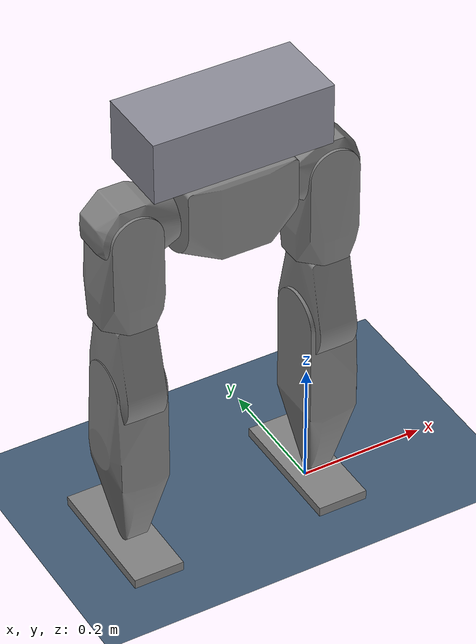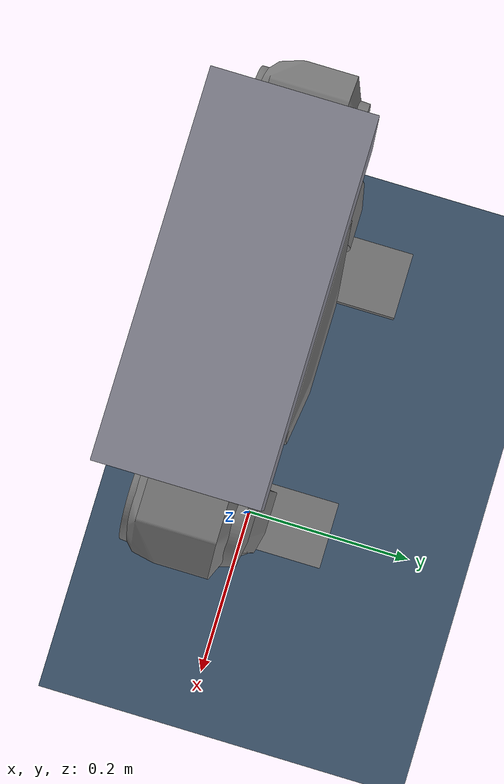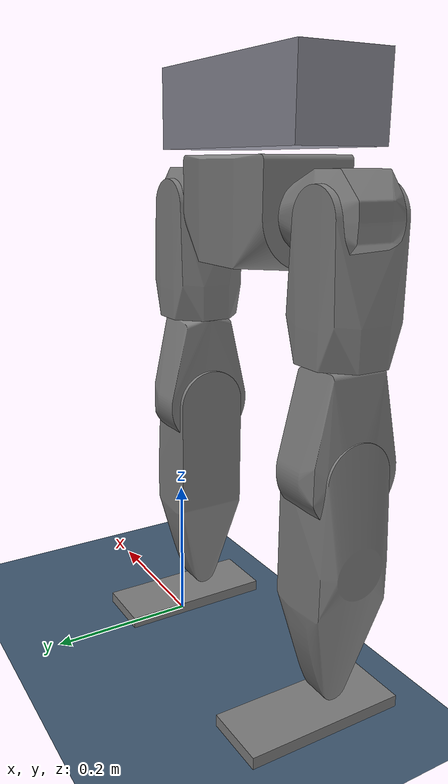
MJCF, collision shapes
<mujoco model="ch_robot">
  <!-- Meshes in the URDF live in ./robot_meshes (relative to this MJCF). -->
  <compiler angle="radian" coordinate="local" meshdir="robot_meshes"/>

  <option timestep="0.002" gravity="0 0 -9.81" integrator="implicitfast" cone="elliptic"/>

  <default>
    <joint limited="true" damping="1.0" frictionloss="0.05" armature="0.0"/>
    <default class="servo">
      <position kp="1" kv="1"/>
    </default>
    <default class="contact_surface">
      <geom condim="3"
            friction="1.0 0.02 0.002"
            margin="0.002"
            solref="0.008 1"
            solimp="0.95 0.99 0.001"/>
    </default>
    <geom type="mesh" contype="0" conaffinity="0" group="0"/>
  </default>

  <!--        ASSETS          -->
  <asset>
    <!-- Collision meshes (URDF: robot_meshes/*.stl) -->
    <mesh name="hip"        file="hip_ch.stl"        scale="0.001 0.001 0.001"/>
    <mesh name="left_leg1"  file="left_leg1_ch.stl"  scale="0.001 0.001 0.001"/>
    <mesh name="left_leg2"  file="left_leg2_ch.stl"  scale="0.001 0.001 0.001"/>
    <mesh name="left_leg3"  file="left_leg3_ch.stl"  scale="0.001 0.001 0.001"/>
    <mesh name="left_leg4"  file="left_leg4_ch.stl"  scale="0.001 0.001 0.001"/>

    <mesh name="right_leg1" file="right_leg1_ch.stl" scale="0.001 0.001 0.001"/>
    <mesh name="right_leg2" file="right_leg2_ch.stl" scale="0.001 0.001 0.001"/>
    <mesh name="right_leg3" file="right_leg3_ch.stl" scale="0.001 0.001 0.001"/>
    <mesh name="right_leg4" file="right_leg4_ch.stl" scale="0.001 0.001 0.001"/>

    <!-- Visual meshes (URDF: robot_meshes/visual/*.stl) -->
    <mesh name="torso_visual"           file="visual/battery_box.stl"       scale="0.001 0.001 0.001"/>
    <mesh name="hip_visual"             file="visual/hip_dumb2.stl"         scale="0.001 0.001 0.001"/>

    <mesh name="left_leg1_visual"       file="visual/left_leg1_dumb.stl"    scale="0.001 0.001 0.001"/>
    <mesh name="left_leg2_visual"       file="visual/left_leg2_dumb.stl"    scale="0.001 0.001 0.001"/>
    <mesh name="left_leg3_visual"       file="visual/left_leg3_dumb.stl"    scale="0.001 0.001 0.001"/>
    <mesh name="left_leg4_visual"       file="visual/left_leg4_dumb.stl"    scale="0.001 0.001 0.001"/>
    <mesh name="left_foot_visual"       file="visual/left_foot.stl"         scale="0.001 0.001 0.001"/>
    <mesh name="left_foot_sole_visual"  file="visual/left_foot_sole.stl"    scale="0.001 0.001 0.001"/>

    <mesh name="right_leg1_visual"      file="visual/right_leg1_dumb.stl"   scale="0.001 0.001 0.001"/>
    <mesh name="right_leg2_visual"      file="visual/right_leg2_dumb.stl"   scale="0.001 0.001 0.001"/>
    <mesh name="right_leg3_visual"      file="visual/right_leg3_dumb.stl"   scale="0.001 0.001 0.001"/>
    <mesh name="right_leg4_visual"      file="visual/right_leg4_dumb.stl"   scale="0.001 0.001 0.001"/>
    <mesh name="right_foot_visual"      file="visual/right_foot.stl"        scale="0.001 0.001 0.001"/>
    <mesh name="right_foot_sole_visual" file="visual/right_foot_sole.stl"   scale="0.001 0.001 0.001"/>

    <texture name="grid" type="2d" builtin="checker" width="512" height="512"
             rgb1="0.2 0.3 0.4" rgb2="0.3 0.4 0.5"/>
    <material name="grid" texture="grid" texrepeat="1 1" texuniform="true" reflectance="0.2"/>

    <material name="metal_silver"
              rgba="0.55 0.55 0.60 1"
              specular="1.0"
              shininess="1.0"
              reflectance="0.5"/>
  </asset>

  <keyframe>
    <key name="locomotion_standing_pose" time="0"
        qpos="0.3 0 0 -0.8 0.5 0.3 0 0 -0.8 0.5"
        qvel="0 0 0 0 0 0 0 0 0 0"
        ctrl="0.3 0 0 -0.8 0.5 0.3 0 0 -0.8 0.5"/>
  </keyframe>

  <!--        WORLD           -->
  <worldbody>
    <light pos="0 0 3" dir="0 0 -1" diffuse="0.8 0.8 0.8" specular="0.2 0.2 0.2" directional="false"/>
    <light pos="2 2 3" dir="-0.5 -0.5 -1" diffuse="0.5 0.5 0.5" specular="0.1 0.1 0.1" directional="false"/>
    <light pos="-2 2 3" dir="0.5 -0.5 -1" diffuse="0.5 0.5 0.5" specular="0.1 0.1 0.1" directional="false"/>

    <geom name="floor" type="plane" size="5 5 0.1" material="grid"
      class="contact_surface" contype="1" conaffinity="1"/>

    <!-- TORSO (URDF: link "torso") -->
    <body name="torso" pos="0 0 0.03">
      <site name="imu" pos="-0.155 -0.016 0.63" size="0.01" rgba="1 0 0 1"/>

      <geom mesh="torso_visual" material="metal_silver"/>

      <!-- URDF torso collision box: size="0.28 0.12 0.096" at origin xyz="-0.154672 -0.03 0.6962"
           MuJoCo box 'size' is HALF-lengths -->
      <geom name="torso_collision_box" type="box" size="0.14 0.06 0.048"
            pos="-0.154672 -0.03 0.6962" contype="1" conaffinity="1" group="1" material="metal_silver"/>

      <inertial pos="-0.15417 -0.030012 0.697219"
                mass="3.175"
                fullinertia="0.005173 0.01947 0.02099 3.126e-17 1.463904e-6 -1.478e-16"/>

      <!-- HIP (URDF: link "hip") -->
      <body name="hip" pos="0 0 0">
        <geom mesh="hip" contype="1" conaffinity="1" group="1"/>
        <geom mesh="hip_visual" material="metal_silver"/>

        <inertial pos="-0.155587 -0.02906 0.584318"
                  mass="5.159055"
                  fullinertia="0.0156 0.02377 0.02517 0.000178966 0.000001857794 -0.000043706028"/>

        <!-- LEFT LEG -->
        <body name="left_leg1" pos="0 0 0">
          <joint name="left_hip1_joint" type="hinge" axis="1 0 0" range="-1.57 1.57" pos="-0.068372 -0.029495 0.577401"/>
          <geom mesh="left_leg1" contype="1" conaffinity="1" group="1"/>
          <geom mesh="left_leg1_visual" material="metal_silver"/>
          <inertial pos="-0.005945 -0.035287 0.577433"
                    mass="2.189611"
                    fullinertia="0.002609 0.003137 0.003391 0.000081259088 0.000001365266 0.000000223227"/>

          <body name="left_leg2" pos="0 0 0">
            <joint name="left_hip2_joint" type="hinge" axis="0 1 0" range="-1.57 0.436332" pos="-0.000048 -0.029495 0.577401"/>
            <geom mesh="left_leg2" contype="1" conaffinity="1" group="1"/>
            <geom mesh="left_leg2_visual" material="metal_silver"/>
            <inertial pos="-0.000018 -0.025475 0.486173"
                      mass="1.709674"
                      fullinertia="0.006082 0.005232 0.002818 0.000025844041 0.000000765045 -0.0005798"/>

            <body name="left_leg3" pos="0 0 0">
              <joint name="left_thigh_joint" type="hinge" axis="0 0 -1" range="-0.785398 0.785398" pos="-0.000048 -0.029495 0.463816"/>
              <geom mesh="left_leg3" contype="1" conaffinity="1" group="1"/>
              <geom mesh="left_leg3_visual" material="metal_silver"/>
              <inertial pos="0.005174 -0.030248 0.318931"
                        mass="3.156742"
                        fullinertia="0.009368 0.0081 0.004377 0.000046968418 0.0002014 -0.000049473856"/>

              <body name="left_leg4" pos="0 0 0">
                <joint name="left_knee_joint" type="hinge" axis="1 0 0" range="-2.0944 0" pos="-0.000048 -0.029495 0.306338"/>
                <geom mesh="left_leg4" contype="1" conaffinity="1" group="1"/>
                <geom mesh="left_leg4_visual" material="metal_silver"/>
                <inertial pos="0.001337 -0.031134 0.183938"
                          mass="1.980828"
                          fullinertia="0.01171 0.01193 0.002972 -0.000022781438 0.0002839 -0.0002341"/>

                <body name="left_foot" pos="0 0 0">
                  <joint name="left_ankle_joint" type="hinge" axis="1 0 0" range="-0.6 0.6" pos="0.00958 -0.03 0.031528"/>

                  <geom name="left_foot_collision_box" type="box" size="0.04 0.105 0.00763"
                        pos="-0.00042 -0.005 -0.0045" class="contact_surface" contype="1" conaffinity="1" group="1"/>

                  <!-- Foot visuals -->
                  <geom mesh="left_foot_visual" material="metal_silver"/>
                  <!-- relative shift = (URDF sole origin) - (URDF foot visual origin) = 0.30958 -->
                  <geom mesh="left_foot_sole_visual" material="metal_silver" pos="0.30958 0 0"/>

                  <inertial pos="-0.00053 -0.020276 0.011109"
                            mass="0.765723"
                            fullinertia="0.002071 0.0004678 0.002213 -0.000017795772 0.000002818065 0.0001167"/>
                </body>
              </body>
            </body>
          </body>
        </body>

        <!-- RIGHT LEG -->
        <body name="right_leg1" pos="0 0 0">
          <joint name="right_hip1_joint" type="hinge" axis="1 0 0" range="-1.57 1.57" pos="-0.24290 -0.029495 0.577401"/>
          <geom mesh="right_leg1" contype="1" conaffinity="1" group="1"/>
          <geom mesh="right_leg1_visual" material="metal_silver"/>
          <inertial pos="-0.305326 -0.035287 0.577434"
                    mass="2.189548"
                    fullinertia="0.002609 0.003137 0.003391 -0.000081252869 -0.00000135392 0.00000024481"/>

          <body name="right_leg2" pos="0 0 0">
            <joint name="right_hip2_joint" type="hinge" axis="0 1 0" range="-0.436332 1.57" pos="-0.311223 -0.029495 0.577401"/>
            <geom mesh="right_leg2" contype="1" conaffinity="1" group="1"/>
            <geom mesh="right_leg2_visual" material="metal_silver"/>
            <inertial pos="-0.311252 -0.025506 0.485714"
                      mass="1.72284"
                      fullinertia="0.006132 0.005281 0.002822 -0.000025837194 -0.000000742612 -0.000583"/>

            <body name="right_leg3" pos="0 0 0">
              <joint name="right_thigh_joint" type="hinge" axis="0 0 1" range="-0.785398 0.785398" pos="-0.311223 -0.029495 0.463816"/>
              <geom mesh="right_leg3" contype="1" conaffinity="1" group="1"/>
              <geom mesh="right_leg3_visual" material="metal_silver"/>
              <inertial pos="-0.317293 -0.030266 0.31875"
                        mass="3.074969"
                        fullinertia="0.009174 0.007824 0.004262 -0.000045044639 -0.0002255 -0.000049133206"/>

              <body name="right_leg4" pos="0 0 0">
                <joint name="right_knee_joint" type="hinge" axis="1 0 0" range="-2.0944 0" pos="-0.311223 -0.029495 0.306338"/>
                <geom mesh="right_leg4" contype="1" conaffinity="1" group="1"/>
                <geom mesh="right_leg4_visual" material="metal_silver"/>
                <inertial pos="-0.312608 -0.031134 0.183938"
                          mass="1.980828"
                          fullinertia="0.01171 0.01193 0.002972 0.000022781459 -0.0002839 -0.0002341"/>

                <body name="right_foot" pos="0 0 0">
                  <joint name="right_ankle_joint" type="hinge" axis="1 0 0" range="-0.6 0.6" pos="-0.320851 -0.03 0.031528"/>

                  <geom name="right_foot_collision_box" type="box" size="0.04 0.105 0.00763"
                        pos="-0.310851 -0.005 -0.0045" class="contact_surface" contype="1" conaffinity="1" group="1"/>

                  <!-- Foot visuals -->
                  <geom mesh="right_foot_visual" material="metal_silver"/>
                  <!-- relative shift = (URDF sole origin) - (URDF foot visual origin) = -0.310851 -->
                  <geom mesh="right_foot_sole_visual" material="metal_silver" pos="-0.310851 0 0"/>

                  <inertial pos="-0.310741 -0.020276 0.011109"
                            mass="0.765723"
                            fullinertia="0.002071 0.0004678 0.002213 0.000017795772 -0.000002818065 0.0001167"/>
                </body>
              </body>
            </body>
          </body>
        </body>

      </body>
    </body>

  </worldbody>

  <!--        ACTUATORS       -->
  <actuator>
    <position name="left_hip1_act"  joint="left_hip1_joint"  kp="300" kv="15" forcelimited="true" forcerange="-120 120" gear="1"/>
    <position name="left_hip2_act"  joint="left_hip2_joint"  kp="300" kv="15" forcelimited="true" forcerange="-120 120" gear="1"/>
    <position name="left_thigh_act" joint="left_thigh_joint" kp="300" kv="15" forcelimited="true" forcerange="-120 120" gear="1"/>
    <position name="left_knee_act"  joint="left_knee_joint"  kp="340" kv="17" forcelimited="true" forcerange="-120 120" gear="1"/>
    <position name="left_ankle_act" joint="left_ankle_joint" kp="160" kv="8"  forcelimited="true" forcerange="-120 120" gear="1"/>

    <!-- Right -->
    <position name="right_hip1_act"  joint="right_hip1_joint"  kp="300" kv="15" forcelimited="true" forcerange="-120 120" gear="1"/>
    <position name="right_hip2_act"  joint="right_hip2_joint"  kp="300" kv="15" forcelimited="true" forcerange="-120 120" gear="1"/>
    <position name="right_thigh_act" joint="right_thigh_joint" kp="300" kv="15" forcelimited="true" forcerange="-120 120" gear="1"/>
    <position name="right_knee_act"  joint="right_knee_joint"  kp="340" kv="17" forcelimited="true" forcerange="-120 120" gear="1"/>
    <position name="right_ankle_act" joint="right_ankle_joint" kp="160" kv="8"  forcelimited="true" forcerange="-120 120" gear="1"/>
  </actuator>

  <contact>
    <pair geom1="left_foot_collision_box"  geom2="floor" condim="3"/>
    <pair geom1="right_foot_collision_box" geom2="floor" condim="3"/>

    <exclude body1="torso" body2="hip"/>

    <!-- No collisions between neighboring links of the left leg -->
    <exclude body1="hip" body2="left_leg1"/>
    <exclude body1="left_leg1" body2="left_leg2"/>
    <exclude body1="left_leg2" body2="left_leg3"/>
    <exclude body1="left_leg3" body2="left_leg4"/>
    <exclude body1="left_leg4" body2="left_foot"/>

    <!-- Same idea for the right leg -->
    <exclude body1="hip" body2="right_leg1"/>
    <exclude body1="right_leg1" body2="right_leg2"/>
    <exclude body1="right_leg2" body2="right_leg3"/>
    <exclude body1="right_leg3" body2="right_leg4"/>
    <exclude body1="right_leg4" body2="right_foot"/>
  </contact>

</mujoco>
